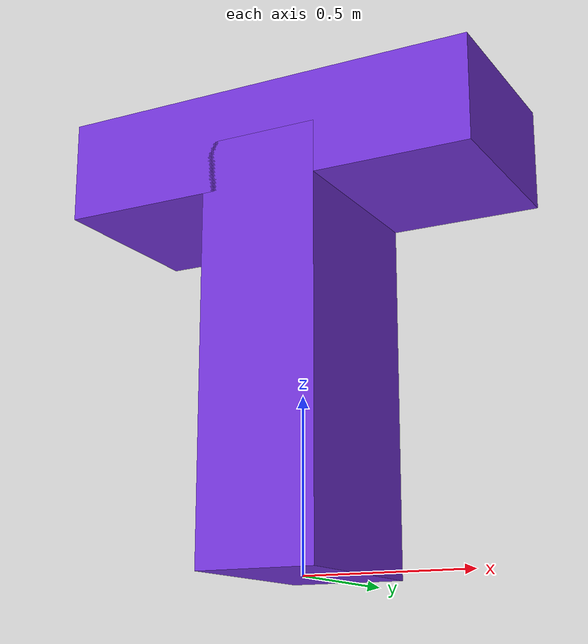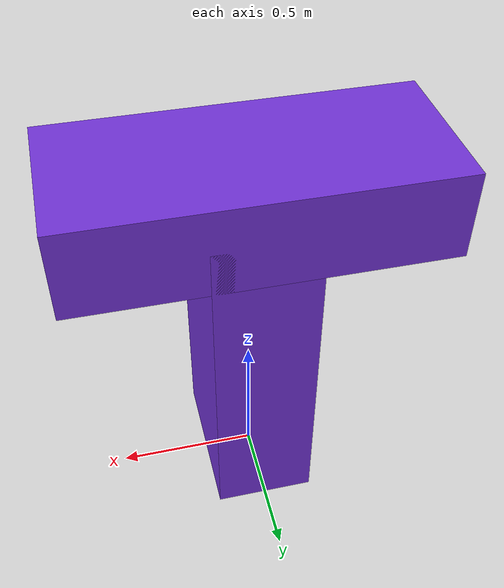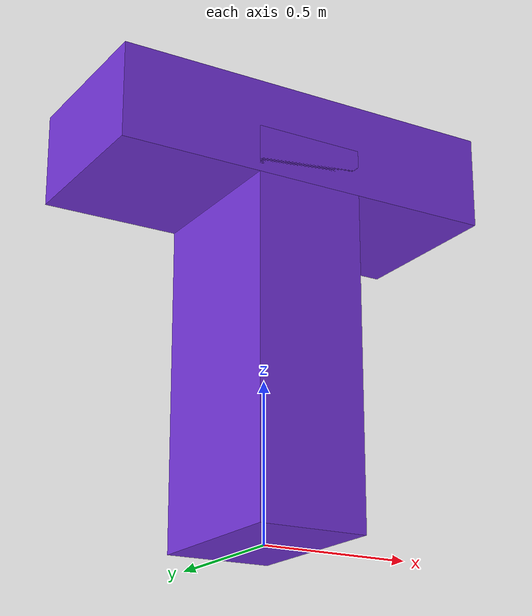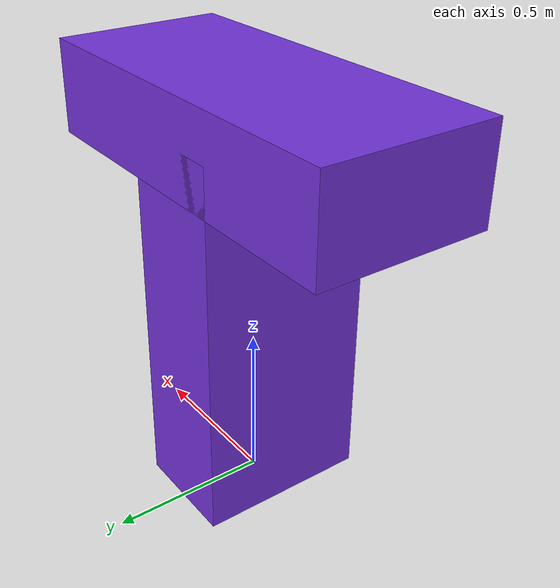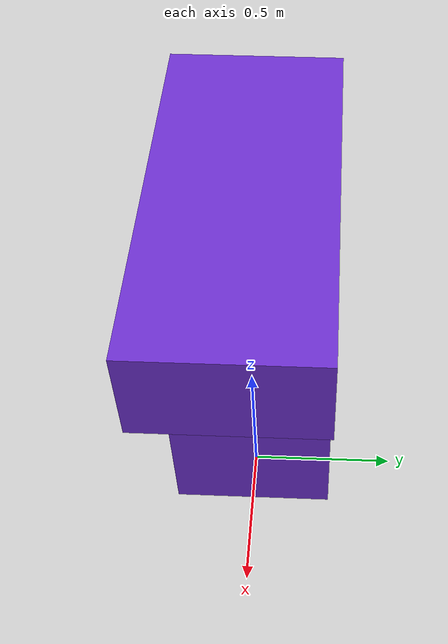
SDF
<?xml version="1.0"?>
<sdf version="1.7">
  <model name="xgc2_geom_t_block">
    <link name="body">
      <kinematic>true</kinematic>
      <gravity>false</gravity>
      <collision name="stem">
        <pose>0 0 0.6 0 0 0</pose>
        <geometry><box><size>0.35 0.55 1.2</size></box></geometry>
      </collision>
      <collision name="top">
        <pose>0 0 1.2 0 0 0</pose>
        <geometry><box><size>1.25 0.55 0.3</size></box></geometry>
      </collision>
      <visual name="stem">
        <pose>0 0 0.6 0 0 0</pose>
        <geometry><box><size>0.35 0.55 1.2</size></box></geometry>
        <material><ambient>0.45 0.2 0.85 1</ambient><diffuse>0.45 0.2 0.85 1</diffuse></material>
      </visual>
      <visual name="top">
        <pose>0 0 1.2 0 0 0</pose>
        <geometry><box><size>1.25 0.55 0.3</size></box></geometry>
        <material><ambient>0.45 0.2 0.85 1</ambient><diffuse>0.45 0.2 0.85 1</diffuse></material>
      </visual>
    </link>
  </model>
</sdf>
